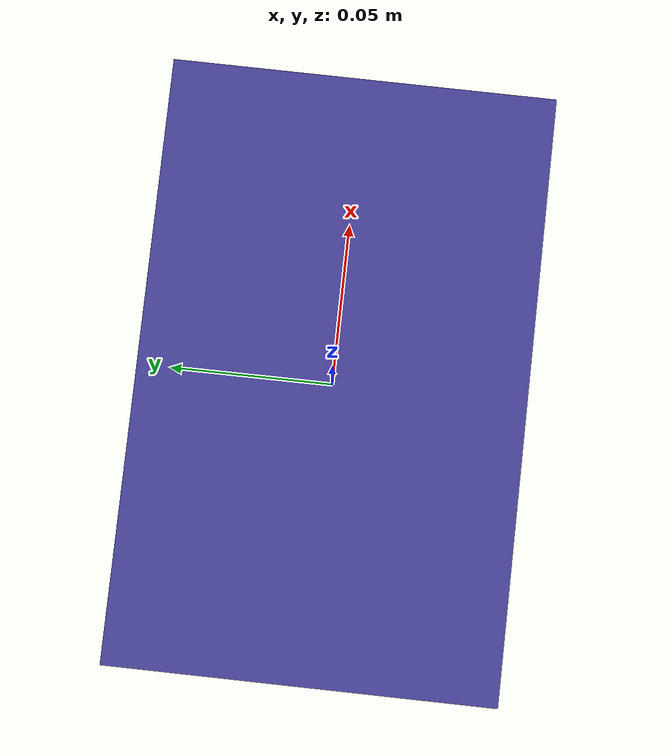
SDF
<sdf version="1.7">
  <model name="blue_berry_box">
    <link name="base_link">
      <inertial>
        <mass>0.05</mass>
        <inertia>
          <ixx>3.177e-04</ixx>
          <ixy>0.000e+00</ixy>
          <ixz>0.000e+00</ixz>
          <iyy>7.172e-04</iyy>
          <iyz>0.000e+00</iyz>
          <izz>9.505e-04</izz>
        </inertia>
      </inertial>
      <visual name="blue_berry_box_visual">
        <geometry>
          <box>
            <size>0.18 0.115 0.045</size>
          </box>
        </geometry>
        <material>
          <diffuse>0.27 0.25 0.59 1.0</diffuse>
        </material>
      </visual>
      <collision name="body">
        <geometry>
          <box>
            <size>0.178 0.113 0.043</size>
          </box>
        </geometry>
      </collision>
      <collision name="corner_0">
        <pose>-0.09 -0.0575 -0.0225 0 0 0</pose>
        <geometry>
          <sphere>
            <radius>0.001</radius>
          </sphere>
        </geometry>
      </collision>
      <collision name="corner_1">
        <pose>-0.09 -0.0575 0.0225 0 0 0</pose>
        <geometry>
          <sphere>
            <radius>0.001</radius>
          </sphere>
        </geometry>
      </collision>
      <collision name="corner_2">
        <pose>-0.09 0.0575 -0.0225 0 0 0</pose>
        <geometry>
          <sphere>
            <radius>0.001</radius>
          </sphere>
        </geometry>
      </collision>
      <collision name="corner_3">
        <pose>-0.09 0.0575 0.0225 0 0 0</pose>
        <geometry>
          <sphere>
            <radius>0.001</radius>
          </sphere>
        </geometry>
      </collision>
      <collision name="corner_4">
        <pose>0.09 -0.0575 -0.0225 0 0 0</pose>
        <geometry>
          <sphere>
            <radius>0.001</radius>
          </sphere>
        </geometry>
      </collision>
      <collision name="corner_5">
        <pose>0.09 -0.0575 0.0225 0 0 0</pose>
        <geometry>
          <sphere>
            <radius>0.001</radius>
          </sphere>
        </geometry>
      </collision>
      <collision name="corner_6">
        <pose>0.09 0.0575 -0.0225 0 0 0</pose>
        <geometry>
          <sphere>
            <radius>0.001</radius>
          </sphere>
        </geometry>
      </collision>
      <collision name="corner_7">
        <pose>0.09 0.0575 0.0225 0 0 0</pose>
        <geometry>
          <sphere>
            <radius>0.001</radius>
          </sphere>
        </geometry>
      </collision>
    </link>
  </model>
</sdf>
